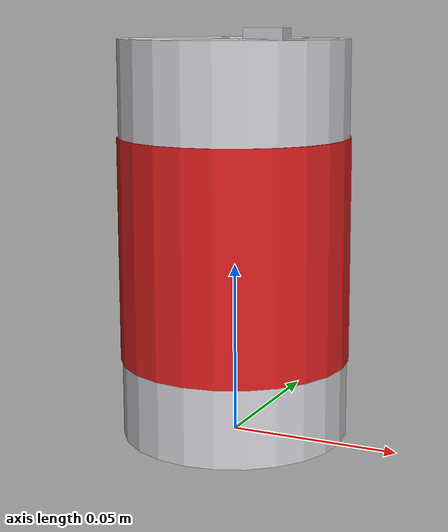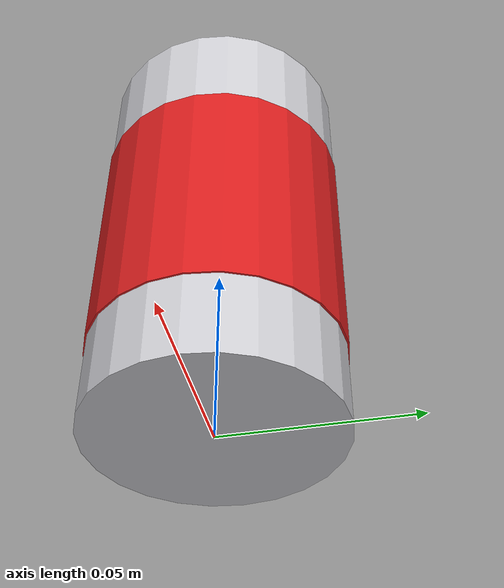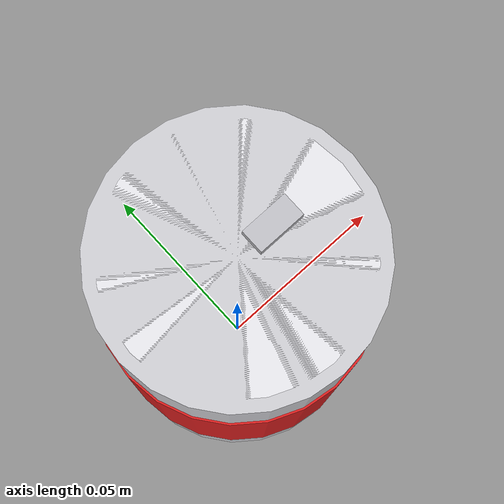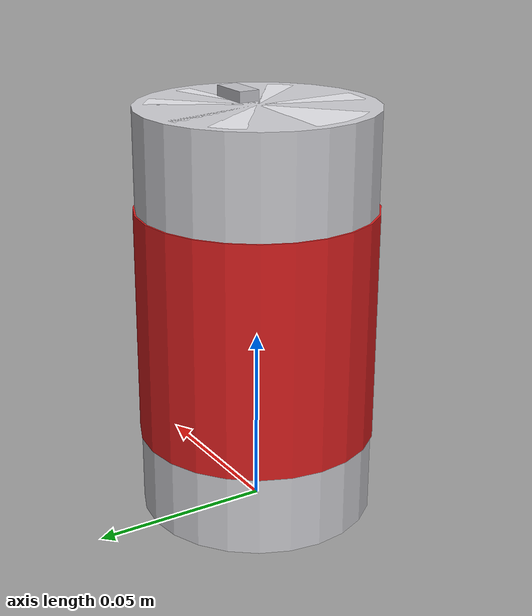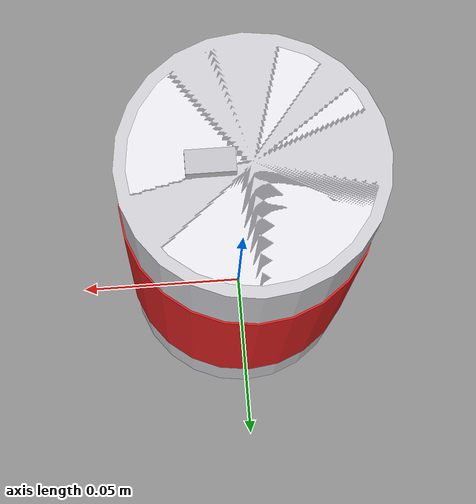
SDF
<?xml version="1.0"?>
<sdf version="1.8">
  <model name="metal_can">
    <static>false</static>
    <link name="link">
      <inertial>
        <mass>0.15</mass>
        <inertia>
          <!-- Cylinder: ixx=iyy=(m/12)*(3r²+h²), izz=(m/2)*r² -->
          <ixx>0.000228</ixx>
          <ixy>0</ixy>
          <ixz>0</ixz>
          <iyy>0.000228</iyy>
          <iyz>0</iyz>
          <izz>0.000082</izz>
        </inertia>
      </inertial>

      <!-- Collision: single cylinder for stable physics -->
      <collision name="collision">
        <pose>0 0 0.0575 0 0 0</pose>
        <geometry>
          <cylinder>
            <radius>0.033</radius>
            <length>0.115</length>
          </cylinder>
        </geometry>
        <surface>
          <friction>
            <ode>
              <mu>0.6</mu>
              <mu2>0.6</mu2>
            </ode>
          </friction>
          <contact>
            <ode>
              <kp>1e5</kp>
              <kd>1</kd>
            </ode>
          </contact>
        </surface>
      </collision>

      <!-- Main can body -->
      <visual name="body">
        <pose>0 0 0.0575 0 0 0</pose>
        <geometry>
          <cylinder>
            <radius>0.033</radius>
            <length>0.115</length>
          </cylinder>
        </geometry>
        <material>
          <ambient>0.75 0.75 0.78 1</ambient>
          <diffuse>0.80 0.80 0.82 1</diffuse>
          <specular>0.9 0.9 0.9 1</specular>
        </material>
      </visual>

      <!-- Top lid (slightly smaller radius, silver) -->
      <visual name="top_lid">
        <pose>0 0 0.1125 0 0 0</pose>
        <geometry>
          <cylinder>
            <radius>0.030</radius>
            <length>0.005</length>
          </cylinder>
        </geometry>
        <material>
          <ambient>0.85 0.85 0.87 1</ambient>
          <diffuse>0.90 0.90 0.92 1</diffuse>
          <specular>1.0 1.0 1.0 1</specular>
        </material>
      </visual>

      <!-- Bottom base -->
      <visual name="bottom_base">
        <pose>0 0 0.003 0 0 0</pose>
        <geometry>
          <cylinder>
            <radius>0.030</radius>
            <length>0.005</length>
          </cylinder>
        </geometry>
        <material>
          <ambient>0.85 0.85 0.87 1</ambient>
          <diffuse>0.90 0.90 0.92 1</diffuse>
          <specular>1.0 1.0 1.0 1</specular>
        </material>
      </visual>

      <!-- Label band (red — generic soda/beverage can) -->
      <visual name="label">
        <pose>0 0 0.055 0 0 0</pose>
        <geometry>
          <cylinder>
            <radius>0.0335</radius>
            <length>0.065</length>
          </cylinder>
        </geometry>
        <material>
          <ambient>0.80 0.10 0.10 1</ambient>
          <diffuse>0.85 0.12 0.12 1</diffuse>
          <specular>0.3 0.1 0.1 1</specular>
        </material>
      </visual>

      <!-- Pull-tab ring (small box on top) -->
      <visual name="pull_tab">
        <pose>0.010 0 0.1165 0 0 0</pose>
        <geometry>
          <box>
            <size>0.012 0.006 0.003</size>
          </box>
        </geometry>
        <material>
          <ambient>0.70 0.70 0.72 1</ambient>
          <diffuse>0.75 0.75 0.77 1</diffuse>
          <specular>0.9 0.9 0.9 1</specular>
        </material>
      </visual>

    </link>
  </model>
</sdf>
